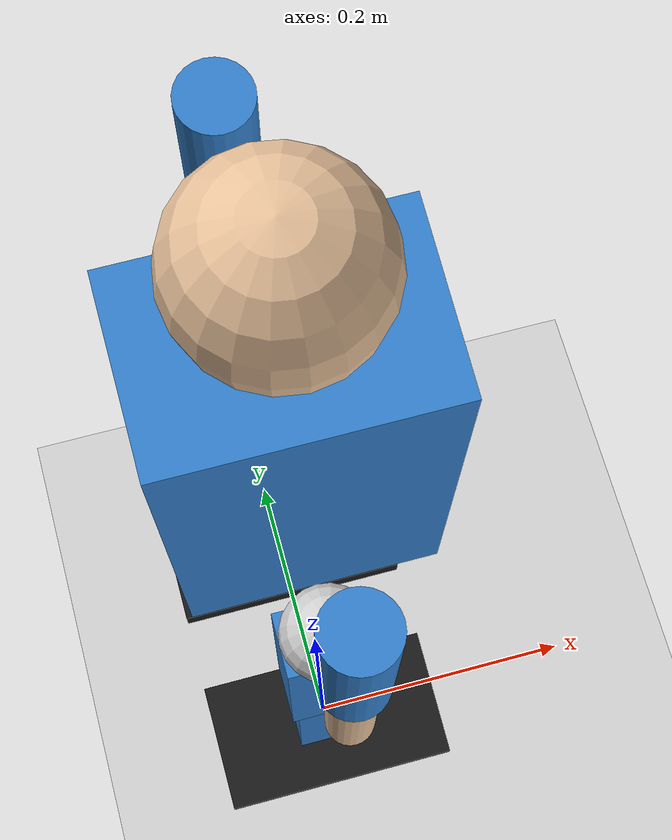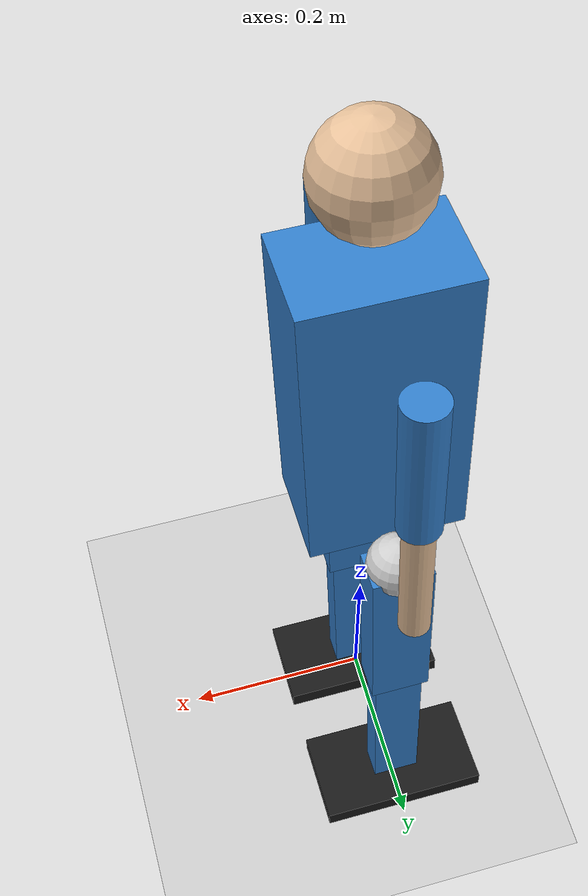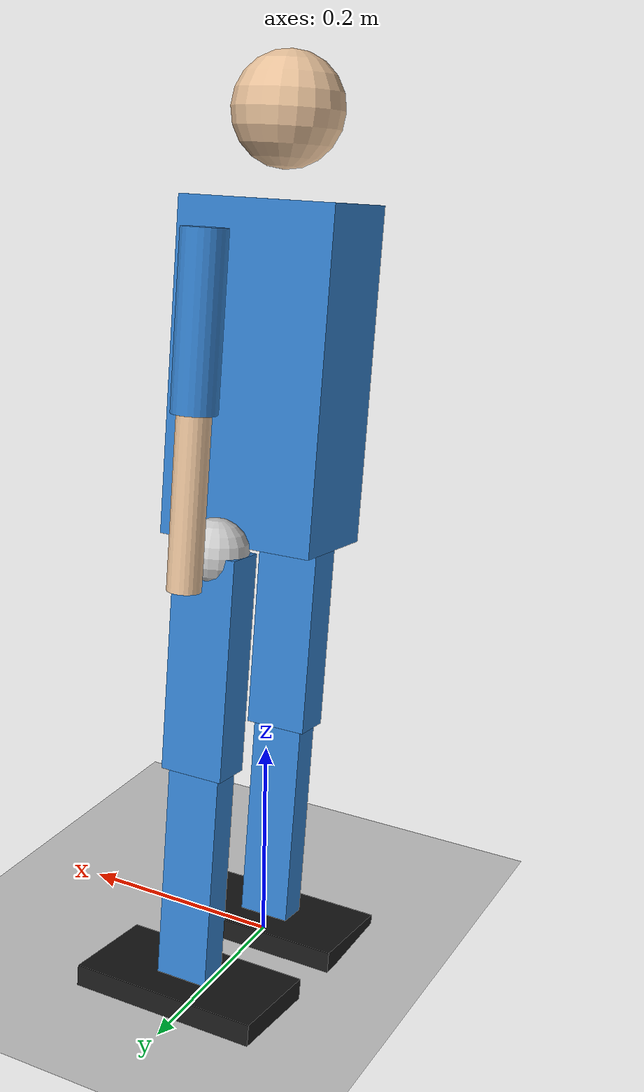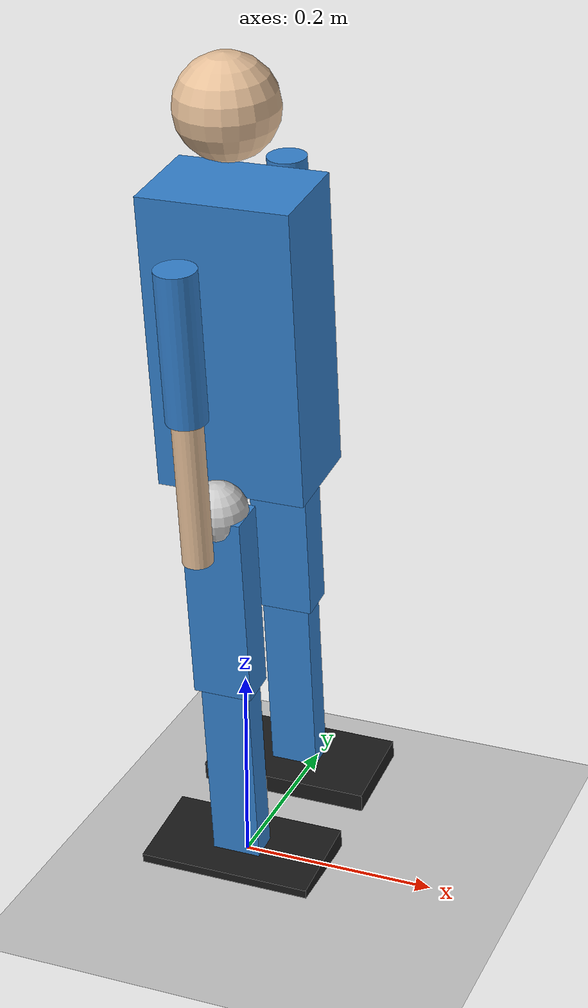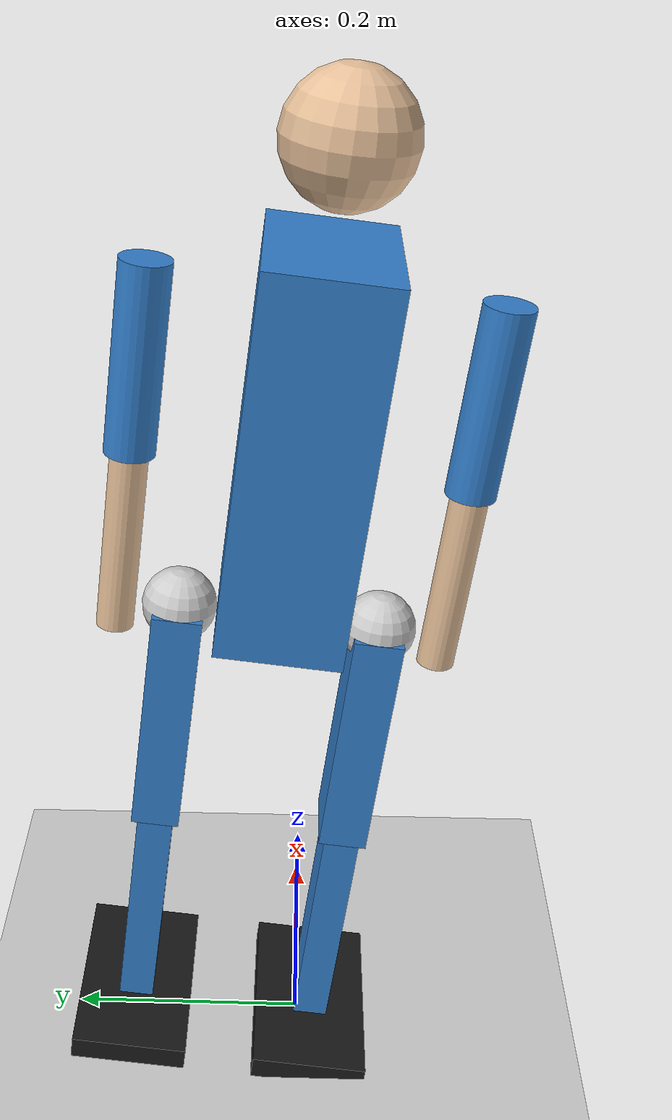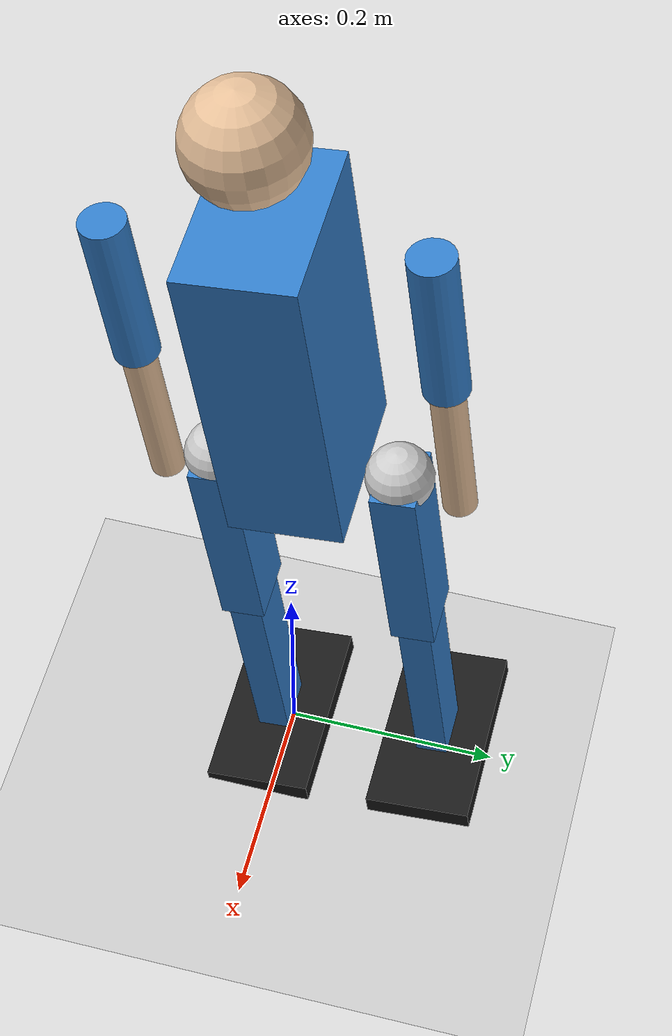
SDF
<?xml version="1.0"?>
<sdf version="1.9">
  <world name="ardupilot_humanoid">
    <physics name="1ms" type="ignore">
      <max_step_size>0.004</max_step_size>
      <real_time_factor>1.0</real_time_factor>
    </physics>
    <plugin filename="gz-sim-physics-system" name="gz::sim::systems::Physics"/>
    <plugin filename="gz-sim-sensors-system" name="gz::sim::systems::Sensors"><render_engine>ogre2</render_engine></plugin>
    <plugin filename="gz-sim-user-commands-system" name="gz::sim::systems::UserCommands"/>
    <plugin filename="gz-sim-scene-broadcaster-system" name="gz::sim::systems::SceneBroadcaster"/>
    <plugin filename="gz-sim-imu-system" name="gz::sim::systems::Imu"/>
    <light type="directional" name="sun">
      <cast_shadows>true</cast_shadows>
      <pose>0 0 10 0 0 0</pose>
      <diffuse>1 1 1 1</diffuse>
      <specular>0.5 0.5 0.5 1</specular>
      <direction>-0.5 0.1 -0.9</direction>
    </light>
    <model name="ground_plane">
      <static>true</static>
      <link name="link">
        <collision name="collision"><geometry><plane><normal>0 0 1</normal></plane></geometry></collision>
        <visual name="visual">
          <geometry><plane><normal>0 0 1</normal><size>100 100</size></plane></geometry>
          <material><ambient>0.8 0.8 0.8 1</ambient><diffuse>0.8 0.8 0.8 1</diffuse></material>
        </visual>
      </link>
    </model>
    <model name="ArduBiped_Proto">

    <static>false</static>
        <pose>0 0 0.57 0.12 0 0</pose>
        <link name="torso">
          <inertial>
            <mass>2.5</mass>
            <inertia><ixx>0.020</ixx><ixy>0</ixy><ixz>0</ixz><iyy>0.020</iyy><iyz>0</iyz><izz>0.010</izz></inertia>
          </inertial>
          <collision name="collision"><geometry><box><size>0.15 0.10 0.30</size></box></geometry></collision>
          <visual name="visual">
            <geometry><box><size>0.15 0.10 0.30</size></box></geometry>
            <material><ambient>0.2 0.5 0.8 1</ambient><diffuse>0.2 0.5 0.8 1</diffuse></material>
          </visual>
          <sensor name="imu_sensor" type="imu">
            <always_on>1</always_on>
            <update_rate>1000</update_rate>
          </sensor>
        </link>
        <link name="head">
          <pose>0 0 0.225 0 0 0</pose>
          <inertial><mass>0.200</mass><inertia><ixx>0.0002</ixx><ixy>0</ixy><ixz>0</ixz><iyy>0.0002</iyy><iyz>0</iyz><izz>0.0002</izz></inertia></inertial>
          <collision name="c"><geometry><sphere><radius>0.05</radius></sphere></geometry></collision>
          <visual name="v">
            <geometry><sphere><radius>0.05</radius></sphere></geometry>
            <material><ambient>0.9 0.75 0.6 1</ambient><diffuse>0.9 0.75 0.6 1</diffuse></material>
          </visual>
        </link>
        <joint name="torso_to_head" type="fixed">
          <parent>torso</parent><child>head</child>
        </joint>
        <link name="l_upper_arm">
          <pose>0 0.130 0.050 0 0 0</pose>
          <inertial><mass>0.200</mass><inertia><ixx>0.001</ixx><ixy>0</ixy><ixz>0</ixz><iyy>0.001</iyy><iyz>0</iyz><izz>0.0001</izz></inertia></inertial>
          <collision name="c"><geometry><cylinder><radius>0.020</radius><length>0.15</length></cylinder></geometry></collision>
          <visual name="v">
            <geometry><cylinder><radius>0.020</radius><length>0.15</length></cylinder></geometry>
            <material><ambient>0.2 0.5 0.8 1</ambient><diffuse>0.2 0.5 0.8 1</diffuse></material>
          </visual>
        </link>
        <link name="r_upper_arm">
          <pose>0 -0.130 0.050 0 0 0</pose>
          <inertial><mass>0.200</mass><inertia><ixx>0.001</ixx><ixy>0</ixy><ixz>0</ixz><iyy>0.001</iyy><iyz>0</iyz><izz>0.0001</izz></inertia></inertial>
          <collision name="c"><geometry><cylinder><radius>0.020</radius><length>0.15</length></cylinder></geometry></collision>
          <visual name="v">
            <geometry><cylinder><radius>0.020</radius><length>0.15</length></cylinder></geometry>
            <material><ambient>0.2 0.5 0.8 1</ambient><diffuse>0.2 0.5 0.8 1</diffuse></material>
          </visual>
        </link>
        <link name="l_forearm">
          <pose>0 0.130 -0.100 0 0 0</pose>
          <inertial><mass>0.150</mass><inertia><ixx>0.0005</ixx><ixy>0</ixy><ixz>0</ixz><iyy>0.0005</iyy><iyz>0</iyz><izz>0.0001</izz></inertia></inertial>
          <collision name="c"><geometry><cylinder><radius>0.015</radius><length>0.15</length></cylinder></geometry></collision>
          <visual name="v">
            <geometry><cylinder><radius>0.015</radius><length>0.15</length></cylinder></geometry>
            <material><ambient>0.9 0.75 0.6 1</ambient><diffuse>0.9 0.75 0.6 1</diffuse></material>
          </visual>
        </link>
        <link name="r_forearm">
          <pose>0 -0.130 -0.100 0 0 0</pose>
          <inertial><mass>0.150</mass><inertia><ixx>0.0005</ixx><ixy>0</ixy><ixz>0</ixz><iyy>0.0005</iyy><iyz>0</iyz><izz>0.0001</izz></inertia></inertial>
          <collision name="c"><geometry><cylinder><radius>0.015</radius><length>0.15</length></cylinder></geometry></collision>
          <visual name="v">
            <geometry><cylinder><radius>0.015</radius><length>0.15</length></cylinder></geometry>
            <material><ambient>0.9 0.75 0.6 1</ambient><diffuse>0.9 0.75 0.6 1</diffuse></material>
          </visual>
        </link>
        <joint name="l_shoulder" type="fixed">
          <parent>torso</parent><child>l_upper_arm</child>
        </joint>
        <joint name="r_shoulder" type="fixed">
          <parent>torso</parent><child>r_upper_arm</child>
        </joint>
        <joint name="l_elbow" type="fixed">
          <parent>l_upper_arm</parent><child>l_forearm</child>
        </joint>
        <joint name="r_elbow" type="fixed">
          <parent>r_upper_arm</parent><child>r_forearm</child>
        </joint>
        <link name="l_hip_pitch_link">
          <pose>0 0.080 -0.150 0 0 0</pose>
          <inertial><mass>0.100</mass><inertia><ixx>0.0001</ixx><ixy>0</ixy><ixz>0</ixz><iyy>0.0001</iyy><iyz>0</iyz><izz>0.0001</izz></inertia></inertial>
          <collision name="c"><geometry><sphere><radius>0.03</radius></sphere></geometry></collision>
          <visual name="v">
            <geometry><sphere><radius>0.03</radius></sphere></geometry>
            <material><ambient>0.8 0.8 0.8 1</ambient><diffuse>0.8 0.8 0.8 1</diffuse></material>
          </visual>
        </link>
        <link name="l_thigh">
          <pose>0 0.080 -0.250 0 0 0</pose>
          <inertial><mass>0.500</mass><inertia><ixx>0.00375</ixx><ixy>0</ixy><ixz>0</ixz><iyy>0.00375</iyy><iyz>0</iyz><izz>0.000156</izz></inertia></inertial>
          <collision name="c"><geometry><box><size>0.06 0.04 0.20</size></box></geometry></collision>
          <visual name="v">
            <geometry><box><size>0.06 0.04 0.20</size></box></geometry>
            <material><ambient>0.2 0.5 0.8 1</ambient><diffuse>0.2 0.5 0.8 1</diffuse></material>
          </visual>
        </link>
        <link name="l_shin">
          <pose>0 0.080 -0.450 0 0 0</pose>
          <inertial><mass>0.300</mass><inertia><ixx>0.00150</ixx><ixy>0</ixy><ixz>0</ixz><iyy>0.00150</iyy><iyz>0</iyz><izz>0.000094</izz></inertia></inertial>
          <collision name="c"><geometry><box><size>0.05 0.03 0.20</size></box></geometry></collision>
          <visual name="v">
            <geometry><box><size>0.05 0.03 0.20</size></box></geometry>
            <material><ambient>0.2 0.5 0.8 1</ambient><diffuse>0.2 0.5 0.8 1</diffuse></material>
          </visual>
        </link>
        <!-- l_foot with soft contact -->
        <link name="l_foot">
          <pose>0 0.080 -0.560 0 0 0</pose>
          <inertial><mass>0.150</mass><inertia><ixx>0.0001</ixx><ixy>0</ixy><ixz>0</ixz><iyy>0.0003</iyy><iyz>0</iyz><izz>0.0004</izz></inertia></inertial>
          <collision name="c">
            <geometry><box><size>0.18 0.10 0.02</size></box></geometry>
            <surface><friction><ode><mu>1.0</mu><mu2>1.0</mu2></ode></friction></surface>
          </collision>
          <visual name="v">
            <geometry><box><size>0.18 0.10 0.02</size></box></geometry>
            <material><ambient>0.1 0.1 0.1 1</ambient><diffuse>0.1 0.1 0.1 1</diffuse></material>
          </visual>
        </link>
        <link name="r_hip_pitch_link">
          <pose>0 -0.080 -0.150 0 0 0</pose>
          <inertial><mass>0.100</mass><inertia><ixx>0.0001</ixx><ixy>0</ixy><ixz>0</ixz><iyy>0.0001</iyy><iyz>0</iyz><izz>0.0001</izz></inertia></inertial>
          <collision name="c"><geometry><sphere><radius>0.03</radius></sphere></geometry></collision>
          <visual name="v">
            <geometry><sphere><radius>0.03</radius></sphere></geometry>
            <material><ambient>0.8 0.8 0.8 1</ambient><diffuse>0.8 0.8 0.8 1</diffuse></material>
          </visual>
        </link>
        <link name="r_thigh">
          <pose>0 -0.080 -0.250 0 0 0</pose>
          <inertial><mass>0.500</mass><inertia><ixx>0.00375</ixx><ixy>0</ixy><ixz>0</ixz><iyy>0.00375</iyy><iyz>0</iyz><izz>0.000156</izz></inertia></inertial>
          <collision name="c"><geometry><box><size>0.06 0.04 0.20</size></box></geometry></collision>
          <visual name="v">
            <geometry><box><size>0.06 0.04 0.20</size></box></geometry>
            <material><ambient>0.2 0.5 0.8 1</ambient><diffuse>0.2 0.5 0.8 1</diffuse></material>
          </visual>
        </link>
        <link name="r_shin">
          <pose>0 -0.080 -0.450 0 0 0</pose>
          <inertial><mass>0.300</mass><inertia><ixx>0.00150</ixx><ixy>0</ixy><ixz>0</ixz><iyy>0.00150</iyy><iyz>0</iyz><izz>0.000094</izz></inertia></inertial>
          <collision name="c"><geometry><box><size>0.05 0.03 0.20</size></box></geometry></collision>
          <visual name="v">
            <geometry><box><size>0.05 0.03 0.20</size></box></geometry>
            <material><ambient>0.2 0.5 0.8 1</ambient><diffuse>0.2 0.5 0.8 1</diffuse></material>
          </visual>
        </link>
        <link name="r_foot">
          <pose>0 -0.080 -0.560 0 0 0</pose>
          <inertial><mass>0.150</mass><inertia><ixx>0.0001</ixx><ixy>0</ixy><ixz>0</ixz><iyy>0.0003</iyy><iyz>0</iyz><izz>0.0004</izz></inertia></inertial>
          <collision name="c">
            <geometry><box><size>0.18 0.10 0.02</size></box></geometry>
            <surface><friction><ode><mu>1.0</mu><mu2>1.0</mu2></ode></friction></surface>
          </collision>
          <visual name="v">
            <geometry><box><size>0.18 0.10 0.02</size></box></geometry>
            <material><ambient>0.1 0.1 0.1 1</ambient><diffuse>0.1 0.1 0.1 1</diffuse></material>
          </visual>
        </link>
        <joint name="l_hip_pitch" type="revolute">
          <parent>torso</parent><child>l_hip_pitch_link</child>
          <axis>
            <xyz>0 1 0</xyz>
            <limit><lower>-1.571</lower><upper>0.523</upper><effort>200</effort><velocity>3</velocity></limit>

          <dynamics>
            <spring_reference>0</spring_reference>
            <spring_stiffness>0</spring_stiffness>
          </dynamics>
        </axis>
        </joint>
        <joint name="l_knee" type="revolute">
          <parent>l_hip_pitch_link</parent><child>l_thigh</child>
          <axis>
            <xyz>0 1 0</xyz>
            <limit><lower>0</lower><upper>2.618</upper><effort>200</effort><velocity>3</velocity></limit>

          <dynamics><damping>20.0</damping><friction>5.0</friction><spring_stiffness>500.0</spring_stiffness><spring_reference>0</spring_reference></dynamics>
        </axis>
        </joint>
        <joint name="l_knee_shin" type="revolute">
          <parent>l_thigh</parent><child>l_shin</child>
          <axis>
            <xyz>0 1 0</xyz>
            <limit><lower>0</lower><upper>2.618</upper><effort>200</effort><velocity>3</velocity></limit>

          <dynamics><damping>20.0</damping><friction>5.0</friction><spring_stiffness>500.0</spring_stiffness><spring_reference>0</spring_reference></dynamics>
        </axis>
        </joint>
        <joint name="l_ankle" type="revolute">
          <parent>l_shin</parent><child>l_foot</child>
          <axis>
            <xyz>0 1 0</xyz>
            <limit><lower>-0.5</lower><upper>0.5</upper><effort>100</effort><velocity>3</velocity></limit>

          <dynamics><damping>20.0</damping><friction>5.0</friction><spring_stiffness>500.0</spring_stiffness><spring_reference>0</spring_reference></dynamics>
        </axis>
        </joint>
        <joint name="r_hip_pitch" type="revolute">
          <parent>torso</parent><child>r_hip_pitch_link</child>
          <axis>
            <xyz>0 1 0</xyz>
            <limit><lower>-1.571</lower><upper>0.523</upper><effort>200</effort><velocity>3</velocity></limit>

          <dynamics>
            <spring_reference>0</spring_reference>
            <spring_stiffness>0</spring_stiffness>
          </dynamics>
        </axis>
        </joint>
        <joint name="r_knee" type="revolute">
          <parent>r_hip_pitch_link</parent><child>r_thigh</child>
          <axis>
            <xyz>0 1 0</xyz>
            <limit><lower>0</lower><upper>2.618</upper><effort>200</effort><velocity>3</velocity></limit>

          <dynamics><damping>20.0</damping><friction>5.0</friction><spring_stiffness>500.0</spring_stiffness><spring_reference>0</spring_reference></dynamics>
        </axis>
        </joint>
        <joint name="r_knee_shin" type="revolute">
          <parent>r_thigh</parent><child>r_shin</child>
          <axis>
            <xyz>0 1 0</xyz>
            <limit><lower>0</lower><upper>2.618</upper><effort>200</effort><velocity>3</velocity></limit>

          <dynamics><damping>20.0</damping><friction>5.0</friction><spring_stiffness>500.0</spring_stiffness><spring_reference>0</spring_reference></dynamics>
        </axis>
        </joint>
        <joint name="r_ankle" type="revolute">
          <parent>r_shin</parent><child>r_foot</child>
          <axis>
            <xyz>0 1 0</xyz>
            <limit><lower>-0.5</lower><upper>0.5</upper><effort>100</effort><velocity>3</velocity></limit>

          <dynamics><damping>20.0</damping><friction>5.0</friction><spring_stiffness>500.0</spring_stiffness><spring_reference>0</spring_reference></dynamics>
        </axis>
        </joint>
        <plugin name="ArduPilotPlugin" filename="ArduPilotPlugin">
          <fdm_addr>127.0.0.1</fdm_addr>
          <fdm_port_in>9002</fdm_port_in>
          <connectionTimeoutMaxCount>5</connectionTimeoutMaxCount>
          <lock_step>0</lock_step>
          <modelXYZToAirplaneXForwardZDown degrees="true">0 0 0 180 0 0</modelXYZToAirplaneXForwardZDown>
          <gazeboXYZToNED degrees="true">0 0 0 180 0 90</gazeboXYZToNED>
          <imuName>torso::imu_sensor</imuName>
          <control channel="0">
            <jointName>l_hip_pitch</jointName>
            <useForce>1</useForce>
            <multiplier>1.571</multiplier>
            <offset>-0.5</offset>
            <servo_min>1000</servo_min>
            <servo_max>2000</servo_max>
            <type>COMMAND</type>
            <cmd_topic>/l_hip_pitch/cmd</cmd_topic>
          </control>
          <control channel="1">
            <jointName>r_hip_pitch</jointName>
            <type>POSITION</type>
            <cmd_topic>/r_hip_pitch/cmd</cmd_topic>
            <p_gain>3</p_gain>
            <servo_min>1000</servo_min><servo_max>2000</servo_max>
            <multiplier>1.571</multiplier><offset>-0.5</offset>
          </control>
          <control channel="2">
            <jointName>l_knee_shin</jointName>
            <type>POSITION</type>
            <cmd_topic>/l_knee/cmd</cmd_topic>
            <p_gain>3</p_gain>
            <servo_min>1000</servo_min><servo_max>2000</servo_max>
            <multiplier>2.618</multiplier><offset>-0.5</offset>
          </control>
          <control channel="3">
            <jointName>r_knee_shin</jointName>
            <type>POSITION</type>
            <cmd_topic>/r_knee/cmd</cmd_topic>
            <p_gain>3</p_gain>
            <servo_min>1000</servo_min><servo_max>2000</servo_max>
            <multiplier>2.618</multiplier><offset>-0.5</offset>
          </control>
        </plugin>

        <plugin filename="gz-sim-joint-state-publisher-system"
                name="gz::sim::systems::JointStatePublisher">
        </plugin>

        <plugin filename="gz-sim-joint-position-controller-system"
                name="gz::sim::systems::JointPositionController">
          <joint_name>l_hip_pitch</joint_name>
          <topic>/l_hip_pitch/cmd</topic>
          <initial_position>-0.09</initial_position>
          <p_gain>10</p_gain>
          <i_gain>0</i_gain>
          <d_gain>0.1</d_gain>
          <cmd_max>5</cmd_max>
          <cmd_min>-5</cmd_min>
        </plugin>
        <plugin filename="gz-sim-joint-position-controller-system"
                name="gz::sim::systems::JointPositionController">
          <joint_name>r_hip_pitch</joint_name>
          <topic>/r_hip_pitch/cmd</topic>
          <initial_position>-0.09</initial_position>
          <p_gain>3</p_gain>
          <i_gain>0.01</i_gain>
          <d_gain>10.0</d_gain>
          <cmd_max>30</cmd_max>
          <cmd_min>-30</cmd_min>
        </plugin>
        <plugin filename="gz-sim-joint-position-controller-system"
                name="gz::sim::systems::JointPositionController">
          <joint_name>l_knee</joint_name>
          <topic>/l_knee/cmd</topic>
          <initial_position>0.35</initial_position>
          <p_gain>3</p_gain>
          <i_gain>0.01</i_gain>
          <d_gain>10.0</d_gain>
          <cmd_max>30</cmd_max>
          <cmd_min>-30</cmd_min>
        </plugin>
        <plugin filename="gz-sim-joint-position-controller-system"
                name="gz::sim::systems::JointPositionController">
          <joint_name>r_knee</joint_name>
          <topic>/r_knee/cmd</topic>
          <initial_position>0.35</initial_position>
          <p_gain>3</p_gain>
          <i_gain>0.01</i_gain>
          <d_gain>10.0</d_gain>
          <cmd_max>30</cmd_max>
          <cmd_min>-30</cmd_min>
        </plugin>
        <plugin filename="gz-sim-apply-joint-force-system"
                name="gz::sim::systems::ApplyJointForce">
            <joint_name>l_hip_pitch</joint_name>
        </plugin>
        <plugin filename="gz-sim-apply-joint-force-system"
                name="gz::sim::systems::ApplyJointForce">
            <joint_name>r_hip_pitch</joint_name>
        </plugin>
        <plugin filename="gz-sim-apply-joint-force-system"
                name="gz::sim::systems::ApplyJointForce">
            <joint_name>l_knee_shin</joint_name>
        </plugin>
        <plugin filename="gz-sim-apply-joint-force-system"
                name="gz::sim::systems::ApplyJointForce">
            <joint_name>r_knee_shin</joint_name>
        </plugin>
        <plugin filename="gz-sim-apply-joint-force-system"
                name="gz::sim::systems::ApplyJointForce">
            <joint_name>l_ankle</joint_name>
        </plugin>
        <plugin filename="gz-sim-apply-joint-force-system"
                name="gz::sim::systems::ApplyJointForce">
            <joint_name>r_ankle</joint_name>
        </plugin>
      </model>
  </world>
</sdf>
